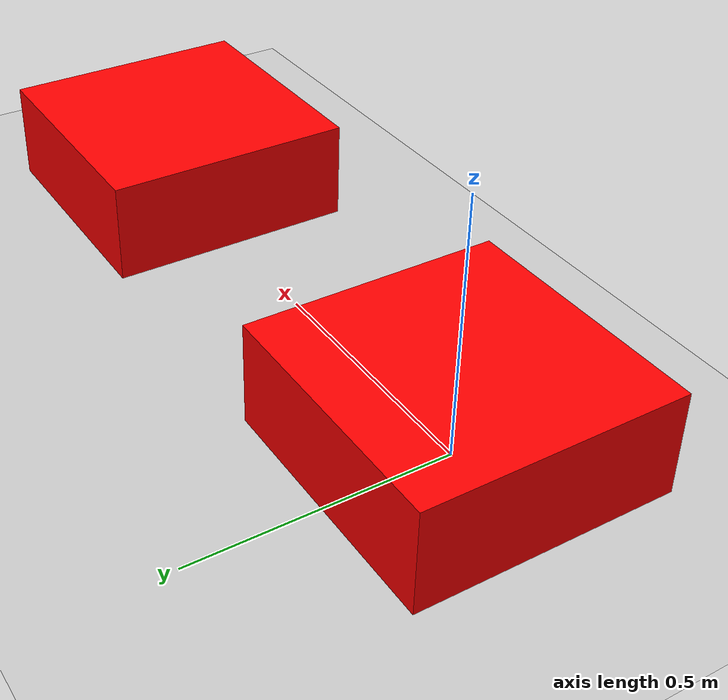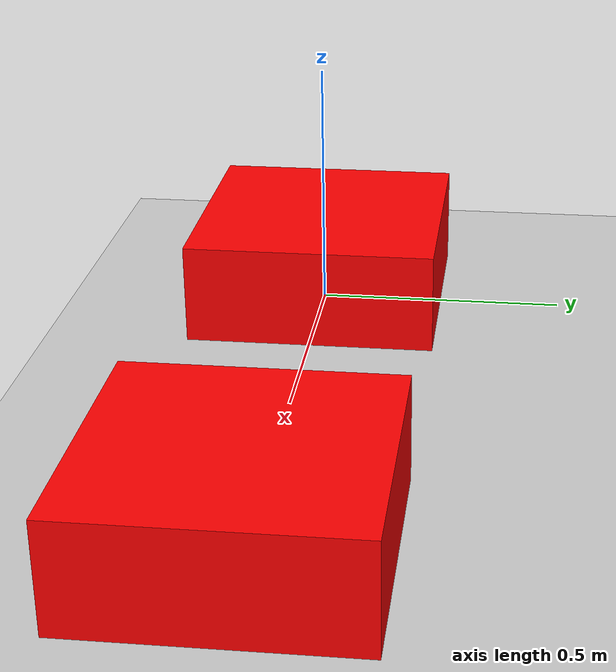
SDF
<?xml version="1.0"?>
<sdf version="1.9">
  <world name="drone_world">

    <plugin filename="gz-sim-user-commands-system"
            name="gz::sim::systems::UserCommands">
    </plugin>

    <include>
      <uri>model://ground_plane</uri>
    </include>

    <include>
      <pose>0 0 0.1 0 0 0</pose>
      <uri>model://drone_1</uri>
    </include>

    <include>
      <pose>1 0 0.1 0 0 0</pose>
      <uri>model://drone_2</uri>
    </include>

  </world>
</sdf>

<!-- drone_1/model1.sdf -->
<sdf version='1.7'>
    <model name="drone_1">
      <static>false</static>
      <link name="base_link">
        <collision name="collision">
          <geometry>
            <box>
              <size>0.5 0.5 0.2</size>
            </box>
          </geometry>
        </collision>
        <visual name="visual">
          <geometry>
            <box>
              <size>0.5 0.5 0.2</size>
            </box>
          </geometry>
          <material>
            <ambient>1 0 0 1</ambient>
            <diffuse>1 0 0 1</diffuse>
          </material>
        </visual>
      </link>
    </model>
</sdf>

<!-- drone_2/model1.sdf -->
<sdf version='1.7'>
    <model name="drone_2">
      <static>false</static>
      <link name="base_link">
        <collision name="collision">
          <geometry>
            <box>
              <size>0.5 0.5 0.2</size>
            </box>
          </geometry>
        </collision>
        <visual name="visual">
          <geometry>
            <box>
              <size>0.5 0.5 0.2</size>
            </box>
          </geometry>
          <material>
            <ambient>1 0 0 1</ambient>
            <diffuse>1 0 0 1</diffuse>
          </material>
        </visual>
      </link>
    </model>
</sdf>
